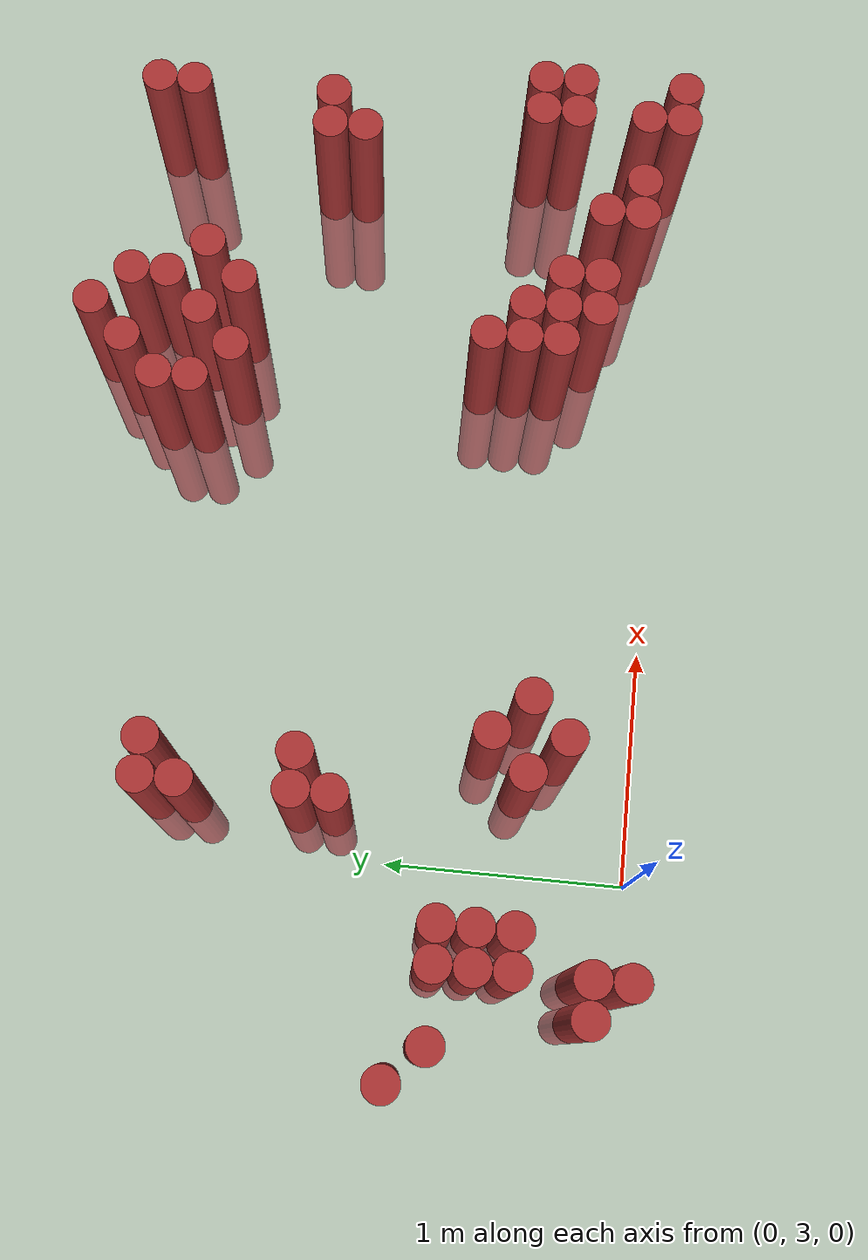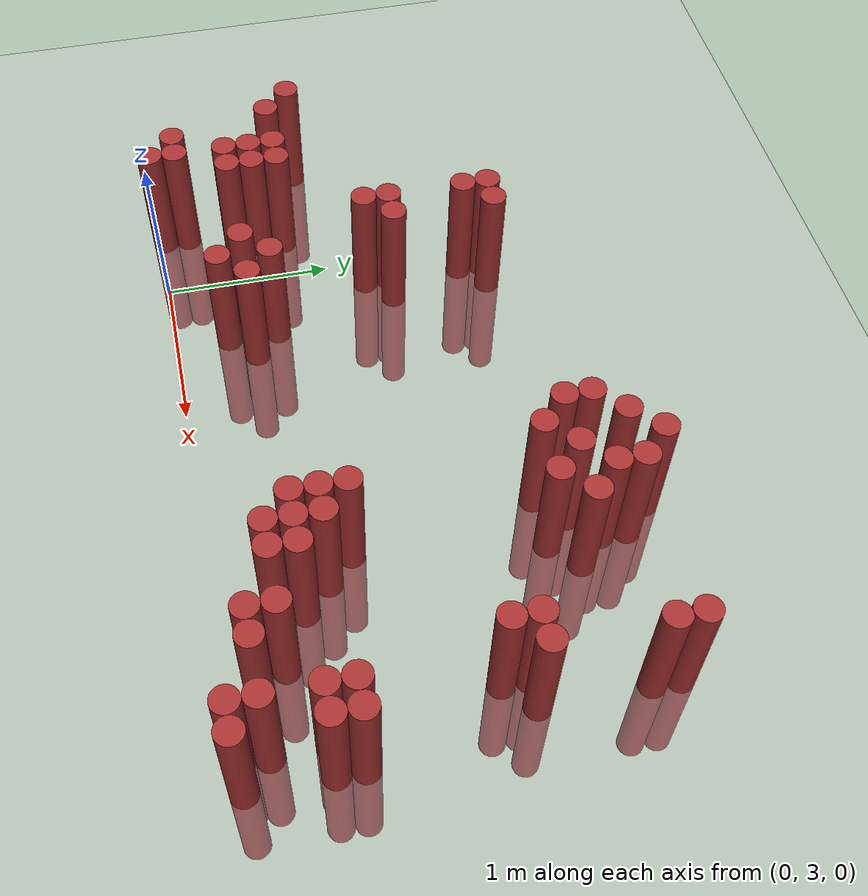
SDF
<sdf version="1.6">
 <world name="default">
  <model name="ground_plane">
   <static>1</static>
   <link name="link">
    <collision name="collision">
     <geometry><plane><normal>0 0 1</normal><size>100 100</size></plane></geometry>
     <surface><friction><ode><mu>100</mu><mu2>50</mu2></ode></friction></surface>
    </collision>
    <visual name="visual">
     <cast_shadows>0</cast_shadows>
     <geometry><plane><normal>0 0 1</normal><size>100 100</size></plane></geometry>
     <material>
      <script><uri>file://media/materials/scripts/gazebo.material</uri><name>Gazebo/Grey</name></script>
     </material>
    </visual>
   </link>
  </model>
  <model name="unit_cylinder_387">
   <static>1</static>
   <pose>-0.875000 3.925000 0.000000 0.000000 0.000000 0.000000</pose>
   <link name="link">
    <inertial>
     <mass>1</mass>
     <inertia><ixx>0.145833</ixx><ixy>0</ixy><ixz>0</ixz><iyy>0.145833</iyy><iyz>0</iyz><izz>0.125</izz></inertia>
    </inertial>
    <collision name="collision">
     <geometry><cylinder><radius>0.075000</radius><length>1.5</length></cylinder></geometry>
    </collision>
    <visual name="visual">
     <geometry><cylinder><radius>0.075000</radius><length>1.5</length></cylinder></geometry>
     <material>
      <ambient>0.648000 0.192000 0.192000 1</ambient>
      <diffuse>0.648000 0.192000 0.192000 1</diffuse>
     </material>
     <material>
      <script><name>Gazebo/Grey</name><uri>file://media/materials/scripts/gazebo.material</uri></script>
     </material>
    </visual>
   </link>
  </model>
  <model name="unit_cylinder_389">
   <static>1</static>
   <pose>-0.725000 3.775000 0.000000 0.000000 0.000000 0.000000</pose>
   <link name="link">
    <inertial>
     <mass>1</mass>
     <inertia><ixx>0.145833</ixx><ixy>0</ixy><ixz>0</ixz><iyy>0.145833</iyy><iyz>0</iyz><izz>0.125</izz></inertia>
    </inertial>
    <collision name="collision">
     <geometry><cylinder><radius>0.075000</radius><length>1.5</length></cylinder></geometry>
    </collision>
    <visual name="visual">
     <geometry><cylinder><radius>0.075000</radius><length>1.5</length></cylinder></geometry>
     <material>
      <ambient>0.648000 0.192000 0.192000 1</ambient>
      <diffuse>0.648000 0.192000 0.192000 1</diffuse>
     </material>
     <material>
      <script><name>Gazebo/Grey</name><uri>file://media/materials/scripts/gazebo.material</uri></script>
     </material>
    </visual>
   </link>
  </model>
  <model name="unit_cylinder_391">
   <static>1</static>
   <pose>-0.575000 3.175000 0.000000 0.000000 0.000000 0.000000</pose>
   <link name="link">
    <inertial>
     <mass>1</mass>
     <inertia><ixx>0.145833</ixx><ixy>0</ixy><ixz>0</ixz><iyy>0.145833</iyy><iyz>0</iyz><izz>0.125</izz></inertia>
    </inertial>
    <collision name="collision">
     <geometry><cylinder><radius>0.075000</radius><length>1.5</length></cylinder></geometry>
    </collision>
    <visual name="visual">
     <geometry><cylinder><radius>0.075000</radius><length>1.5</length></cylinder></geometry>
     <material>
      <ambient>0.648000 0.192000 0.192000 1</ambient>
      <diffuse>0.648000 0.192000 0.192000 1</diffuse>
     </material>
     <material>
      <script><name>Gazebo/Grey</name><uri>file://media/materials/scripts/gazebo.material</uri></script>
     </material>
    </visual>
   </link>
  </model>
  <model name="unit_cylinder_392">
   <static>1</static>
   <pose>-0.425000 3.025000 0.000000 0.000000 0.000000 0.000000</pose>
   <link name="link">
    <inertial>
     <mass>1</mass>
     <inertia><ixx>0.145833</ixx><ixy>0</ixy><ixz>0</ixz><iyy>0.145833</iyy><iyz>0</iyz><izz>0.125</izz></inertia>
    </inertial>
    <collision name="collision">
     <geometry><cylinder><radius>0.075000</radius><length>1.5</length></cylinder></geometry>
    </collision>
    <visual name="visual">
     <geometry><cylinder><radius>0.075000</radius><length>1.5</length></cylinder></geometry>
     <material>
      <ambient>0.648000 0.192000 0.192000 1</ambient>
      <diffuse>0.648000 0.192000 0.192000 1</diffuse>
     </material>
     <material>
      <script><name>Gazebo/Grey</name><uri>file://media/materials/scripts/gazebo.material</uri></script>
     </material>
    </visual>
   </link>
  </model>
  <model name="unit_cylinder_393">
   <static>1</static>
   <pose>-0.425000 3.175000 0.000000 0.000000 0.000000 0.000000</pose>
   <link name="link">
    <inertial>
     <mass>1</mass>
     <inertia><ixx>0.145833</ixx><ixy>0</ixy><ixz>0</ixz><iyy>0.145833</iyy><iyz>0</iyz><izz>0.125</izz></inertia>
    </inertial>
    <collision name="collision">
     <geometry><cylinder><radius>0.075000</radius><length>1.5</length></cylinder></geometry>
    </collision>
    <visual name="visual">
     <geometry><cylinder><radius>0.075000</radius><length>1.5</length></cylinder></geometry>
     <material>
      <ambient>0.648000 0.192000 0.192000 1</ambient>
      <diffuse>0.648000 0.192000 0.192000 1</diffuse>
     </material>
     <material>
      <script><name>Gazebo/Grey</name><uri>file://media/materials/scripts/gazebo.material</uri></script>
     </material>
    </visual>
   </link>
  </model>
  <model name="unit_cylinder_394">
   <static>1</static>
   <pose>-0.425000 3.475000 0.000000 0.000000 0.000000 0.000000</pose>
   <link name="link">
    <inertial>
     <mass>1</mass>
     <inertia><ixx>0.145833</ixx><ixy>0</ixy><ixz>0</ixz><iyy>0.145833</iyy><iyz>0</iyz><izz>0.125</izz></inertia>
    </inertial>
    <collision name="collision">
     <geometry><cylinder><radius>0.075000</radius><length>1.5</length></cylinder></geometry>
    </collision>
    <visual name="visual">
     <geometry><cylinder><radius>0.075000</radius><length>1.5</length></cylinder></geometry>
     <material>
      <ambient>0.648000 0.192000 0.192000 1</ambient>
      <diffuse>0.648000 0.192000 0.192000 1</diffuse>
     </material>
     <material>
      <script><name>Gazebo/Grey</name><uri>file://media/materials/scripts/gazebo.material</uri></script>
     </material>
    </visual>
   </link>
  </model>
  <model name="unit_cylinder_395">
   <static>1</static>
   <pose>-0.425000 3.625000 0.000000 0.000000 0.000000 0.000000</pose>
   <link name="link">
    <inertial>
     <mass>1</mass>
     <inertia><ixx>0.145833</ixx><ixy>0</ixy><ixz>0</ixz><iyy>0.145833</iyy><iyz>0</iyz><izz>0.125</izz></inertia>
    </inertial>
    <collision name="collision">
     <geometry><cylinder><radius>0.075000</radius><length>1.5</length></cylinder></geometry>
    </collision>
    <visual name="visual">
     <geometry><cylinder><radius>0.075000</radius><length>1.5</length></cylinder></geometry>
     <material>
      <ambient>0.648000 0.192000 0.192000 1</ambient>
      <diffuse>0.648000 0.192000 0.192000 1</diffuse>
     </material>
     <material>
      <script><name>Gazebo/Grey</name><uri>file://media/materials/scripts/gazebo.material</uri></script>
     </material>
    </visual>
   </link>
  </model>
  <model name="unit_cylinder_396">
   <static>1</static>
   <pose>-0.425000 3.775000 0.000000 0.000000 0.000000 0.000000</pose>
   <link name="link">
    <inertial>
     <mass>1</mass>
     <inertia><ixx>0.145833</ixx><ixy>0</ixy><ixz>0</ixz><iyy>0.145833</iyy><iyz>0</iyz><izz>0.125</izz></inertia>
    </inertial>
    <collision name="collision">
     <geometry><cylinder><radius>0.075000</radius><length>1.5</length></cylinder></geometry>
    </collision>
    <visual name="visual">
     <geometry><cylinder><radius>0.075000</radius><length>1.5</length></cylinder></geometry>
     <material>
      <ambient>0.648000 0.192000 0.192000 1</ambient>
      <diffuse>0.648000 0.192000 0.192000 1</diffuse>
     </material>
     <material>
      <script><name>Gazebo/Grey</name><uri>file://media/materials/scripts/gazebo.material</uri></script>
     </material>
    </visual>
   </link>
  </model>
  <model name="unit_cylinder_399">
   <static>1</static>
   <pose>-0.275000 3.475000 0.000000 0.000000 0.000000 0.000000</pose>
   <link name="link">
    <inertial>
     <mass>1</mass>
     <inertia><ixx>0.145833</ixx><ixy>0</ixy><ixz>0</ixz><iyy>0.145833</iyy><iyz>0</iyz><izz>0.125</izz></inertia>
    </inertial>
    <collision name="collision">
     <geometry><cylinder><radius>0.075000</radius><length>1.5</length></cylinder></geometry>
    </collision>
    <visual name="visual">
     <geometry><cylinder><radius>0.075000</radius><length>1.5</length></cylinder></geometry>
     <material>
      <ambient>0.648000 0.192000 0.192000 1</ambient>
      <diffuse>0.648000 0.192000 0.192000 1</diffuse>
     </material>
     <material>
      <script><name>Gazebo/Grey</name><uri>file://media/materials/scripts/gazebo.material</uri></script>
     </material>
    </visual>
   </link>
  </model>
  <model name="unit_cylinder_400">
   <static>1</static>
   <pose>-0.275000 3.625000 0.000000 0.000000 0.000000 0.000000</pose>
   <link name="link">
    <inertial>
     <mass>1</mass>
     <inertia><ixx>0.145833</ixx><ixy>0</ixy><ixz>0</ixz><iyy>0.145833</iyy><iyz>0</iyz><izz>0.125</izz></inertia>
    </inertial>
    <collision name="collision">
     <geometry><cylinder><radius>0.075000</radius><length>1.5</length></cylinder></geometry>
    </collision>
    <visual name="visual">
     <geometry><cylinder><radius>0.075000</radius><length>1.5</length></cylinder></geometry>
     <material>
      <ambient>0.648000 0.192000 0.192000 1</ambient>
      <diffuse>0.648000 0.192000 0.192000 1</diffuse>
     </material>
     <material>
      <script><name>Gazebo/Grey</name><uri>file://media/materials/scripts/gazebo.material</uri></script>
     </material>
    </visual>
   </link>
  </model>
  <model name="unit_cylinder_401">
   <static>1</static>
   <pose>-0.275000 3.775000 0.000000 0.000000 0.000000 0.000000</pose>
   <link name="link">
    <inertial>
     <mass>1</mass>
     <inertia><ixx>0.145833</ixx><ixy>0</ixy><ixz>0</ixz><iyy>0.145833</iyy><iyz>0</iyz><izz>0.125</izz></inertia>
    </inertial>
    <collision name="collision">
     <geometry><cylinder><radius>0.075000</radius><length>1.5</length></cylinder></geometry>
    </collision>
    <visual name="visual">
     <geometry><cylinder><radius>0.075000</radius><length>1.5</length></cylinder></geometry>
     <material>
      <ambient>0.648000 0.192000 0.192000 1</ambient>
      <diffuse>0.648000 0.192000 0.192000 1</diffuse>
     </material>
     <material>
      <script><name>Gazebo/Grey</name><uri>file://media/materials/scripts/gazebo.material</uri></script>
     </material>
    </visual>
   </link>
  </model>
  <model name="unit_cylinder_405">
   <static>1</static>
   <pose>0.175000 4.225000 0.000000 0.000000 0.000000 0.000000</pose>
   <link name="link">
    <inertial>
     <mass>1</mass>
     <inertia><ixx>0.145833</ixx><ixy>0</ixy><ixz>0</ixz><iyy>0.145833</iyy><iyz>0</iyz><izz>0.125</izz></inertia>
    </inertial>
    <collision name="collision">
     <geometry><cylinder><radius>0.075000</radius><length>1.5</length></cylinder></geometry>
    </collision>
    <visual name="visual">
     <geometry><cylinder><radius>0.075000</radius><length>1.5</length></cylinder></geometry>
     <material>
      <ambient>0.648000 0.192000 0.192000 1</ambient>
      <diffuse>0.648000 0.192000 0.192000 1</diffuse>
     </material>
     <material>
      <script><name>Gazebo/Grey</name><uri>file://media/materials/scripts/gazebo.material</uri></script>
     </material>
    </visual>
   </link>
  </model>
  <model name="unit_cylinder_406">
   <static>1</static>
   <pose>0.175000 4.375000 0.000000 0.000000 0.000000 0.000000</pose>
   <link name="link">
    <inertial>
     <mass>1</mass>
     <inertia><ixx>0.145833</ixx><ixy>0</ixy><ixz>0</ixz><iyy>0.145833</iyy><iyz>0</iyz><izz>0.125</izz></inertia>
    </inertial>
    <collision name="collision">
     <geometry><cylinder><radius>0.075000</radius><length>1.5</length></cylinder></geometry>
    </collision>
    <visual name="visual">
     <geometry><cylinder><radius>0.075000</radius><length>1.5</length></cylinder></geometry>
     <material>
      <ambient>0.648000 0.192000 0.192000 1</ambient>
      <diffuse>0.648000 0.192000 0.192000 1</diffuse>
     </material>
     <material>
      <script><name>Gazebo/Grey</name><uri>file://media/materials/scripts/gazebo.material</uri></script>
     </material>
    </visual>
   </link>
  </model>
  <model name="unit_cylinder_407">
   <static>1</static>
   <pose>0.175000 4.825000 0.000000 0.000000 0.000000 0.000000</pose>
   <link name="link">
    <inertial>
     <mass>1</mass>
     <inertia><ixx>0.145833</ixx><ixy>0</ixy><ixz>0</ixz><iyy>0.145833</iyy><iyz>0</iyz><izz>0.125</izz></inertia>
    </inertial>
    <collision name="collision">
     <geometry><cylinder><radius>0.075000</radius><length>1.5</length></cylinder></geometry>
    </collision>
    <visual name="visual">
     <geometry><cylinder><radius>0.075000</radius><length>1.5</length></cylinder></geometry>
     <material>
      <ambient>0.648000 0.192000 0.192000 1</ambient>
      <diffuse>0.648000 0.192000 0.192000 1</diffuse>
     </material>
     <material>
      <script><name>Gazebo/Grey</name><uri>file://media/materials/scripts/gazebo.material</uri></script>
     </material>
    </visual>
   </link>
  </model>
  <model name="unit_cylinder_408">
   <static>1</static>
   <pose>0.175000 4.975000 0.000000 0.000000 0.000000 0.000000</pose>
   <link name="link">
    <inertial>
     <mass>1</mass>
     <inertia><ixx>0.145833</ixx><ixy>0</ixy><ixz>0</ixz><iyy>0.145833</iyy><iyz>0</iyz><izz>0.125</izz></inertia>
    </inertial>
    <collision name="collision">
     <geometry><cylinder><radius>0.075000</radius><length>1.5</length></cylinder></geometry>
    </collision>
    <visual name="visual">
     <geometry><cylinder><radius>0.075000</radius><length>1.5</length></cylinder></geometry>
     <material>
      <ambient>0.648000 0.192000 0.192000 1</ambient>
      <diffuse>0.648000 0.192000 0.192000 1</diffuse>
     </material>
     <material>
      <script><name>Gazebo/Grey</name><uri>file://media/materials/scripts/gazebo.material</uri></script>
     </material>
    </visual>
   </link>
  </model>
  <model name="unit_cylinder_415">
   <static>1</static>
   <pose>0.325000 3.475000 0.000000 0.000000 0.000000 0.000000</pose>
   <link name="link">
    <inertial>
     <mass>1</mass>
     <inertia><ixx>0.145833</ixx><ixy>0</ixy><ixz>0</ixz><iyy>0.145833</iyy><iyz>0</iyz><izz>0.125</izz></inertia>
    </inertial>
    <collision name="collision">
     <geometry><cylinder><radius>0.075000</radius><length>1.5</length></cylinder></geometry>
    </collision>
    <visual name="visual">
     <geometry><cylinder><radius>0.075000</radius><length>1.5</length></cylinder></geometry>
     <material>
      <ambient>0.648000 0.192000 0.192000 1</ambient>
      <diffuse>0.648000 0.192000 0.192000 1</diffuse>
     </material>
     <material>
      <script><name>Gazebo/Grey</name><uri>file://media/materials/scripts/gazebo.material</uri></script>
     </material>
    </visual>
   </link>
  </model>
  <model name="unit_cylinder_416">
   <static>1</static>
   <pose>0.325000 4.375000 0.000000 0.000000 0.000000 0.000000</pose>
   <link name="link">
    <inertial>
     <mass>1</mass>
     <inertia><ixx>0.145833</ixx><ixy>0</ixy><ixz>0</ixz><iyy>0.145833</iyy><iyz>0</iyz><izz>0.125</izz></inertia>
    </inertial>
    <collision name="collision">
     <geometry><cylinder><radius>0.075000</radius><length>1.5</length></cylinder></geometry>
    </collision>
    <visual name="visual">
     <geometry><cylinder><radius>0.075000</radius><length>1.5</length></cylinder></geometry>
     <material>
      <ambient>0.648000 0.192000 0.192000 1</ambient>
      <diffuse>0.648000 0.192000 0.192000 1</diffuse>
     </material>
     <material>
      <script><name>Gazebo/Grey</name><uri>file://media/materials/scripts/gazebo.material</uri></script>
     </material>
    </visual>
   </link>
  </model>
  <model name="unit_cylinder_417">
   <static>1</static>
   <pose>0.325000 4.975000 0.000000 0.000000 0.000000 0.000000</pose>
   <link name="link">
    <inertial>
     <mass>1</mass>
     <inertia><ixx>0.145833</ixx><ixy>0</ixy><ixz>0</ixz><iyy>0.145833</iyy><iyz>0</iyz><izz>0.125</izz></inertia>
    </inertial>
    <collision name="collision">
     <geometry><cylinder><radius>0.075000</radius><length>1.5</length></cylinder></geometry>
    </collision>
    <visual name="visual">
     <geometry><cylinder><radius>0.075000</radius><length>1.5</length></cylinder></geometry>
     <material>
      <ambient>0.648000 0.192000 0.192000 1</ambient>
      <diffuse>0.648000 0.192000 0.192000 1</diffuse>
     </material>
     <material>
      <script><name>Gazebo/Grey</name><uri>file://media/materials/scripts/gazebo.material</uri></script>
     </material>
    </visual>
   </link>
  </model>
  <model name="unit_cylinder_424">
   <static>1</static>
   <pose>0.475000 3.325000 0.000000 0.000000 0.000000 0.000000</pose>
   <link name="link">
    <inertial>
     <mass>1</mass>
     <inertia><ixx>0.145833</ixx><ixy>0</ixy><ixz>0</ixz><iyy>0.145833</iyy><iyz>0</iyz><izz>0.125</izz></inertia>
    </inertial>
    <collision name="collision">
     <geometry><cylinder><radius>0.075000</radius><length>1.5</length></cylinder></geometry>
    </collision>
    <visual name="visual">
     <geometry><cylinder><radius>0.075000</radius><length>1.5</length></cylinder></geometry>
     <material>
      <ambient>0.648000 0.192000 0.192000 1</ambient>
      <diffuse>0.648000 0.192000 0.192000 1</diffuse>
     </material>
     <material>
      <script><name>Gazebo/Grey</name><uri>file://media/materials/scripts/gazebo.material</uri></script>
     </material>
    </visual>
   </link>
  </model>
  <model name="unit_cylinder_425">
   <static>1</static>
   <pose>0.475000 3.625000 0.000000 0.000000 0.000000 0.000000</pose>
   <link name="link">
    <inertial>
     <mass>1</mass>
     <inertia><ixx>0.145833</ixx><ixy>0</ixy><ixz>0</ixz><iyy>0.145833</iyy><iyz>0</iyz><izz>0.125</izz></inertia>
    </inertial>
    <collision name="collision">
     <geometry><cylinder><radius>0.075000</radius><length>1.5</length></cylinder></geometry>
    </collision>
    <visual name="visual">
     <geometry><cylinder><radius>0.075000</radius><length>1.5</length></cylinder></geometry>
     <material>
      <ambient>0.648000 0.192000 0.192000 1</ambient>
      <diffuse>0.648000 0.192000 0.192000 1</diffuse>
     </material>
     <material>
      <script><name>Gazebo/Grey</name><uri>file://media/materials/scripts/gazebo.material</uri></script>
     </material>
    </visual>
   </link>
  </model>
  <model name="unit_cylinder_427">
   <static>1</static>
   <pose>0.625000 3.475000 0.000000 0.000000 0.000000 0.000000</pose>
   <link name="link">
    <inertial>
     <mass>1</mass>
     <inertia><ixx>0.145833</ixx><ixy>0</ixy><ixz>0</ixz><iyy>0.145833</iyy><iyz>0</iyz><izz>0.125</izz></inertia>
    </inertial>
    <collision name="collision">
     <geometry><cylinder><radius>0.075000</radius><length>1.5</length></cylinder></geometry>
    </collision>
    <visual name="visual">
     <geometry><cylinder><radius>0.075000</radius><length>1.5</length></cylinder></geometry>
     <material>
      <ambient>0.648000 0.192000 0.192000 1</ambient>
      <diffuse>0.648000 0.192000 0.192000 1</diffuse>
     </material>
     <material>
      <script><name>Gazebo/Grey</name><uri>file://media/materials/scripts/gazebo.material</uri></script>
     </material>
    </visual>
   </link>
  </model>
  <model name="unit_cylinder_442">
   <static>1</static>
   <pose>1.825000 4.975000 0.000000 0.000000 0.000000 0.000000</pose>
   <link name="link">
    <inertial>
     <mass>1</mass>
     <inertia><ixx>0.145833</ixx><ixy>0</ixy><ixz>0</ixz><iyy>0.145833</iyy><iyz>0</iyz><izz>0.125</izz></inertia>
    </inertial>
    <collision name="collision">
     <geometry><cylinder><radius>0.075000</radius><length>1.5</length></cylinder></geometry>
    </collision>
    <visual name="visual">
     <geometry><cylinder><radius>0.075000</radius><length>1.5</length></cylinder></geometry>
     <material>
      <ambient>0.648000 0.192000 0.192000 1</ambient>
      <diffuse>0.648000 0.192000 0.192000 1</diffuse>
     </material>
     <material>
      <script><name>Gazebo/Grey</name><uri>file://media/materials/scripts/gazebo.material</uri></script>
     </material>
    </visual>
   </link>
  </model>
  <model name="unit_cylinder_443">
   <static>1</static>
   <pose>1.825000 5.125000 0.000000 0.000000 0.000000 0.000000</pose>
   <link name="link">
    <inertial>
     <mass>1</mass>
     <inertia><ixx>0.145833</ixx><ixy>0</ixy><ixz>0</ixz><iyy>0.145833</iyy><iyz>0</iyz><izz>0.125</izz></inertia>
    </inertial>
    <collision name="collision">
     <geometry><cylinder><radius>0.075000</radius><length>1.5</length></cylinder></geometry>
    </collision>
    <visual name="visual">
     <geometry><cylinder><radius>0.075000</radius><length>1.5</length></cylinder></geometry>
     <material>
      <ambient>0.648000 0.192000 0.192000 1</ambient>
      <diffuse>0.648000 0.192000 0.192000 1</diffuse>
     </material>
     <material>
      <script><name>Gazebo/Grey</name><uri>file://media/materials/scripts/gazebo.material</uri></script>
     </material>
    </visual>
   </link>
  </model>
  <model name="unit_cylinder_447">
   <static>1</static>
   <pose>1.975000 4.825000 0.000000 0.000000 0.000000 0.000000</pose>
   <link name="link">
    <inertial>
     <mass>1</mass>
     <inertia><ixx>0.145833</ixx><ixy>0</ixy><ixz>0</ixz><iyy>0.145833</iyy><iyz>0</iyz><izz>0.125</izz></inertia>
    </inertial>
    <collision name="collision">
     <geometry><cylinder><radius>0.075000</radius><length>1.5</length></cylinder></geometry>
    </collision>
    <visual name="visual">
     <geometry><cylinder><radius>0.075000</radius><length>1.5</length></cylinder></geometry>
     <material>
      <ambient>0.648000 0.192000 0.192000 1</ambient>
      <diffuse>0.648000 0.192000 0.192000 1</diffuse>
     </material>
     <material>
      <script><name>Gazebo/Grey</name><uri>file://media/materials/scripts/gazebo.material</uri></script>
     </material>
    </visual>
   </link>
  </model>
  <model name="unit_cylinder_448">
   <static>1</static>
   <pose>1.975000 5.275000 0.000000 0.000000 0.000000 0.000000</pose>
   <link name="link">
    <inertial>
     <mass>1</mass>
     <inertia><ixx>0.145833</ixx><ixy>0</ixy><ixz>0</ixz><iyy>0.145833</iyy><iyz>0</iyz><izz>0.125</izz></inertia>
    </inertial>
    <collision name="collision">
     <geometry><cylinder><radius>0.075000</radius><length>1.5</length></cylinder></geometry>
    </collision>
    <visual name="visual">
     <geometry><cylinder><radius>0.075000</radius><length>1.5</length></cylinder></geometry>
     <material>
      <ambient>0.648000 0.192000 0.192000 1</ambient>
      <diffuse>0.648000 0.192000 0.192000 1</diffuse>
     </material>
     <material>
      <script><name>Gazebo/Grey</name><uri>file://media/materials/scripts/gazebo.material</uri></script>
     </material>
    </visual>
   </link>
  </model>
  <model name="unit_cylinder_451">
   <static>1</static>
   <pose>2.125000 3.475000 0.000000 0.000000 0.000000 0.000000</pose>
   <link name="link">
    <inertial>
     <mass>1</mass>
     <inertia><ixx>0.145833</ixx><ixy>0</ixy><ixz>0</ixz><iyy>0.145833</iyy><iyz>0</iyz><izz>0.125</izz></inertia>
    </inertial>
    <collision name="collision">
     <geometry><cylinder><radius>0.075000</radius><length>1.5</length></cylinder></geometry>
    </collision>
    <visual name="visual">
     <geometry><cylinder><radius>0.075000</radius><length>1.5</length></cylinder></geometry>
     <material>
      <ambient>0.648000 0.192000 0.192000 1</ambient>
      <diffuse>0.648000 0.192000 0.192000 1</diffuse>
     </material>
     <material>
      <script><name>Gazebo/Grey</name><uri>file://media/materials/scripts/gazebo.material</uri></script>
     </material>
    </visual>
   </link>
  </model>
  <model name="unit_cylinder_452">
   <static>1</static>
   <pose>2.125000 3.625000 0.000000 0.000000 0.000000 0.000000</pose>
   <link name="link">
    <inertial>
     <mass>1</mass>
     <inertia><ixx>0.145833</ixx><ixy>0</ixy><ixz>0</ixz><iyy>0.145833</iyy><iyz>0</iyz><izz>0.125</izz></inertia>
    </inertial>
    <collision name="collision">
     <geometry><cylinder><radius>0.075000</radius><length>1.5</length></cylinder></geometry>
    </collision>
    <visual name="visual">
     <geometry><cylinder><radius>0.075000</radius><length>1.5</length></cylinder></geometry>
     <material>
      <ambient>0.648000 0.192000 0.192000 1</ambient>
      <diffuse>0.648000 0.192000 0.192000 1</diffuse>
     </material>
     <material>
      <script><name>Gazebo/Grey</name><uri>file://media/materials/scripts/gazebo.material</uri></script>
     </material>
    </visual>
   </link>
  </model>
  <model name="unit_cylinder_453">
   <static>1</static>
   <pose>2.125000 3.775000 0.000000 0.000000 0.000000 0.000000</pose>
   <link name="link">
    <inertial>
     <mass>1</mass>
     <inertia><ixx>0.145833</ixx><ixy>0</ixy><ixz>0</ixz><iyy>0.145833</iyy><iyz>0</iyz><izz>0.125</izz></inertia>
    </inertial>
    <collision name="collision">
     <geometry><cylinder><radius>0.075000</radius><length>1.5</length></cylinder></geometry>
    </collision>
    <visual name="visual">
     <geometry><cylinder><radius>0.075000</radius><length>1.5</length></cylinder></geometry>
     <material>
      <ambient>0.648000 0.192000 0.192000 1</ambient>
      <diffuse>0.648000 0.192000 0.192000 1</diffuse>
     </material>
     <material>
      <script><name>Gazebo/Grey</name><uri>file://media/materials/scripts/gazebo.material</uri></script>
     </material>
    </visual>
   </link>
  </model>
  <model name="unit_cylinder_454">
   <static>1</static>
   <pose>2.125000 4.975000 0.000000 0.000000 0.000000 0.000000</pose>
   <link name="link">
    <inertial>
     <mass>1</mass>
     <inertia><ixx>0.145833</ixx><ixy>0</ixy><ixz>0</ixz><iyy>0.145833</iyy><iyz>0</iyz><izz>0.125</izz></inertia>
    </inertial>
    <collision name="collision">
     <geometry><cylinder><radius>0.075000</radius><length>1.5</length></cylinder></geometry>
    </collision>
    <visual name="visual">
     <geometry><cylinder><radius>0.075000</radius><length>1.5</length></cylinder></geometry>
     <material>
      <ambient>0.648000 0.192000 0.192000 1</ambient>
      <diffuse>0.648000 0.192000 0.192000 1</diffuse>
     </material>
     <material>
      <script><name>Gazebo/Grey</name><uri>file://media/materials/scripts/gazebo.material</uri></script>
     </material>
    </visual>
   </link>
  </model>
  <model name="unit_cylinder_455">
   <static>1</static>
   <pose>2.125000 5.425000 0.000000 0.000000 0.000000 0.000000</pose>
   <link name="link">
    <inertial>
     <mass>1</mass>
     <inertia><ixx>0.145833</ixx><ixy>0</ixy><ixz>0</ixz><iyy>0.145833</iyy><iyz>0</iyz><izz>0.125</izz></inertia>
    </inertial>
    <collision name="collision">
     <geometry><cylinder><radius>0.075000</radius><length>1.5</length></cylinder></geometry>
    </collision>
    <visual name="visual">
     <geometry><cylinder><radius>0.075000</radius><length>1.5</length></cylinder></geometry>
     <material>
      <ambient>0.648000 0.192000 0.192000 1</ambient>
      <diffuse>0.648000 0.192000 0.192000 1</diffuse>
     </material>
     <material>
      <script><name>Gazebo/Grey</name><uri>file://media/materials/scripts/gazebo.material</uri></script>
     </material>
    </visual>
   </link>
  </model>
  <model name="unit_cylinder_460">
   <static>1</static>
   <pose>2.275000 3.325000 0.000000 0.000000 0.000000 0.000000</pose>
   <link name="link">
    <inertial>
     <mass>1</mass>
     <inertia><ixx>0.145833</ixx><ixy>0</ixy><ixz>0</ixz><iyy>0.145833</iyy><iyz>0</iyz><izz>0.125</izz></inertia>
    </inertial>
    <collision name="collision">
     <geometry><cylinder><radius>0.075000</radius><length>1.5</length></cylinder></geometry>
    </collision>
    <visual name="visual">
     <geometry><cylinder><radius>0.075000</radius><length>1.5</length></cylinder></geometry>
     <material>
      <ambient>0.648000 0.192000 0.192000 1</ambient>
      <diffuse>0.648000 0.192000 0.192000 1</diffuse>
     </material>
     <material>
      <script><name>Gazebo/Grey</name><uri>file://media/materials/scripts/gazebo.material</uri></script>
     </material>
    </visual>
   </link>
  </model>
  <model name="unit_cylinder_461">
   <static>1</static>
   <pose>2.275000 3.475000 0.000000 0.000000 0.000000 0.000000</pose>
   <link name="link">
    <inertial>
     <mass>1</mass>
     <inertia><ixx>0.145833</ixx><ixy>0</ixy><ixz>0</ixz><iyy>0.145833</iyy><iyz>0</iyz><izz>0.125</izz></inertia>
    </inertial>
    <collision name="collision">
     <geometry><cylinder><radius>0.075000</radius><length>1.5</length></cylinder></geometry>
    </collision>
    <visual name="visual">
     <geometry><cylinder><radius>0.075000</radius><length>1.5</length></cylinder></geometry>
     <material>
      <ambient>0.648000 0.192000 0.192000 1</ambient>
      <diffuse>0.648000 0.192000 0.192000 1</diffuse>
     </material>
     <material>
      <script><name>Gazebo/Grey</name><uri>file://media/materials/scripts/gazebo.material</uri></script>
     </material>
    </visual>
   </link>
  </model>
  <model name="unit_cylinder_462">
   <static>1</static>
   <pose>2.275000 3.625000 0.000000 0.000000 0.000000 0.000000</pose>
   <link name="link">
    <inertial>
     <mass>1</mass>
     <inertia><ixx>0.145833</ixx><ixy>0</ixy><ixz>0</ixz><iyy>0.145833</iyy><iyz>0</iyz><izz>0.125</izz></inertia>
    </inertial>
    <collision name="collision">
     <geometry><cylinder><radius>0.075000</radius><length>1.5</length></cylinder></geometry>
    </collision>
    <visual name="visual">
     <geometry><cylinder><radius>0.075000</radius><length>1.5</length></cylinder></geometry>
     <material>
      <ambient>0.648000 0.192000 0.192000 1</ambient>
      <diffuse>0.648000 0.192000 0.192000 1</diffuse>
     </material>
     <material>
      <script><name>Gazebo/Grey</name><uri>file://media/materials/scripts/gazebo.material</uri></script>
     </material>
    </visual>
   </link>
  </model>
  <model name="unit_cylinder_463">
   <static>1</static>
   <pose>2.275000 4.825000 0.000000 0.000000 0.000000 0.000000</pose>
   <link name="link">
    <inertial>
     <mass>1</mass>
     <inertia><ixx>0.145833</ixx><ixy>0</ixy><ixz>0</ixz><iyy>0.145833</iyy><iyz>0</iyz><izz>0.125</izz></inertia>
    </inertial>
    <collision name="collision">
     <geometry><cylinder><radius>0.075000</radius><length>1.5</length></cylinder></geometry>
    </collision>
    <visual name="visual">
     <geometry><cylinder><radius>0.075000</radius><length>1.5</length></cylinder></geometry>
     <material>
      <ambient>0.648000 0.192000 0.192000 1</ambient>
      <diffuse>0.648000 0.192000 0.192000 1</diffuse>
     </material>
     <material>
      <script><name>Gazebo/Grey</name><uri>file://media/materials/scripts/gazebo.material</uri></script>
     </material>
    </visual>
   </link>
  </model>
  <model name="unit_cylinder_464">
   <static>1</static>
   <pose>2.275000 5.125000 0.000000 0.000000 0.000000 0.000000</pose>
   <link name="link">
    <inertial>
     <mass>1</mass>
     <inertia><ixx>0.145833</ixx><ixy>0</ixy><ixz>0</ixz><iyy>0.145833</iyy><iyz>0</iyz><izz>0.125</izz></inertia>
    </inertial>
    <collision name="collision">
     <geometry><cylinder><radius>0.075000</radius><length>1.5</length></cylinder></geometry>
    </collision>
    <visual name="visual">
     <geometry><cylinder><radius>0.075000</radius><length>1.5</length></cylinder></geometry>
     <material>
      <ambient>0.648000 0.192000 0.192000 1</ambient>
      <diffuse>0.648000 0.192000 0.192000 1</diffuse>
     </material>
     <material>
      <script><name>Gazebo/Grey</name><uri>file://media/materials/scripts/gazebo.material</uri></script>
     </material>
    </visual>
   </link>
  </model>
  <model name="unit_cylinder_465">
   <static>1</static>
   <pose>2.275000 5.275000 0.000000 0.000000 0.000000 0.000000</pose>
   <link name="link">
    <inertial>
     <mass>1</mass>
     <inertia><ixx>0.145833</ixx><ixy>0</ixy><ixz>0</ixz><iyy>0.145833</iyy><iyz>0</iyz><izz>0.125</izz></inertia>
    </inertial>
    <collision name="collision">
     <geometry><cylinder><radius>0.075000</radius><length>1.5</length></cylinder></geometry>
    </collision>
    <visual name="visual">
     <geometry><cylinder><radius>0.075000</radius><length>1.5</length></cylinder></geometry>
     <material>
      <ambient>0.648000 0.192000 0.192000 1</ambient>
      <diffuse>0.648000 0.192000 0.192000 1</diffuse>
     </material>
     <material>
      <script><name>Gazebo/Grey</name><uri>file://media/materials/scripts/gazebo.material</uri></script>
     </material>
    </visual>
   </link>
  </model>
  <model name="unit_cylinder_468">
   <static>1</static>
   <pose>2.425000 3.325000 0.000000 0.000000 0.000000 0.000000</pose>
   <link name="link">
    <inertial>
     <mass>1</mass>
     <inertia><ixx>0.145833</ixx><ixy>0</ixy><ixz>0</ixz><iyy>0.145833</iyy><iyz>0</iyz><izz>0.125</izz></inertia>
    </inertial>
    <collision name="collision">
     <geometry><cylinder><radius>0.075000</radius><length>1.5</length></cylinder></geometry>
    </collision>
    <visual name="visual">
     <geometry><cylinder><radius>0.075000</radius><length>1.5</length></cylinder></geometry>
     <material>
      <ambient>0.648000 0.192000 0.192000 1</ambient>
      <diffuse>0.648000 0.192000 0.192000 1</diffuse>
     </material>
     <material>
      <script><name>Gazebo/Grey</name><uri>file://media/materials/scripts/gazebo.material</uri></script>
     </material>
    </visual>
   </link>
  </model>
  <model name="unit_cylinder_469">
   <static>1</static>
   <pose>2.425000 3.475000 0.000000 0.000000 0.000000 0.000000</pose>
   <link name="link">
    <inertial>
     <mass>1</mass>
     <inertia><ixx>0.145833</ixx><ixy>0</ixy><ixz>0</ixz><iyy>0.145833</iyy><iyz>0</iyz><izz>0.125</izz></inertia>
    </inertial>
    <collision name="collision">
     <geometry><cylinder><radius>0.075000</radius><length>1.5</length></cylinder></geometry>
    </collision>
    <visual name="visual">
     <geometry><cylinder><radius>0.075000</radius><length>1.5</length></cylinder></geometry>
     <material>
      <ambient>0.648000 0.192000 0.192000 1</ambient>
      <diffuse>0.648000 0.192000 0.192000 1</diffuse>
     </material>
     <material>
      <script><name>Gazebo/Grey</name><uri>file://media/materials/scripts/gazebo.material</uri></script>
     </material>
    </visual>
   </link>
  </model>
  <model name="unit_cylinder_470">
   <static>1</static>
   <pose>2.425000 4.975000 0.000000 0.000000 0.000000 0.000000</pose>
   <link name="link">
    <inertial>
     <mass>1</mass>
     <inertia><ixx>0.145833</ixx><ixy>0</ixy><ixz>0</ixz><iyy>0.145833</iyy><iyz>0</iyz><izz>0.125</izz></inertia>
    </inertial>
    <collision name="collision">
     <geometry><cylinder><radius>0.075000</radius><length>1.5</length></cylinder></geometry>
    </collision>
    <visual name="visual">
     <geometry><cylinder><radius>0.075000</radius><length>1.5</length></cylinder></geometry>
     <material>
      <ambient>0.648000 0.192000 0.192000 1</ambient>
      <diffuse>0.648000 0.192000 0.192000 1</diffuse>
     </material>
     <material>
      <script><name>Gazebo/Grey</name><uri>file://media/materials/scripts/gazebo.material</uri></script>
     </material>
    </visual>
   </link>
  </model>
  <model name="unit_cylinder_476">
   <static>1</static>
   <pose>2.725000 3.175000 0.000000 0.000000 0.000000 0.000000</pose>
   <link name="link">
    <inertial>
     <mass>1</mass>
     <inertia><ixx>0.145833</ixx><ixy>0</ixy><ixz>0</ixz><iyy>0.145833</iyy><iyz>0</iyz><izz>0.125</izz></inertia>
    </inertial>
    <collision name="collision">
     <geometry><cylinder><radius>0.075000</radius><length>1.5</length></cylinder></geometry>
    </collision>
    <visual name="visual">
     <geometry><cylinder><radius>0.075000</radius><length>1.5</length></cylinder></geometry>
     <material>
      <ambient>0.648000 0.192000 0.192000 1</ambient>
      <diffuse>0.648000 0.192000 0.192000 1</diffuse>
     </material>
     <material>
      <script><name>Gazebo/Grey</name><uri>file://media/materials/scripts/gazebo.material</uri></script>
     </material>
    </visual>
   </link>
  </model>
  <model name="unit_cylinder_477">
   <static>1</static>
   <pose>2.725000 3.325000 0.000000 0.000000 0.000000 0.000000</pose>
   <link name="link">
    <inertial>
     <mass>1</mass>
     <inertia><ixx>0.145833</ixx><ixy>0</ixy><ixz>0</ixz><iyy>0.145833</iyy><iyz>0</iyz><izz>0.125</izz></inertia>
    </inertial>
    <collision name="collision">
     <geometry><cylinder><radius>0.075000</radius><length>1.5</length></cylinder></geometry>
    </collision>
    <visual name="visual">
     <geometry><cylinder><radius>0.075000</radius><length>1.5</length></cylinder></geometry>
     <material>
      <ambient>0.648000 0.192000 0.192000 1</ambient>
      <diffuse>0.648000 0.192000 0.192000 1</diffuse>
     </material>
     <material>
      <script><name>Gazebo/Grey</name><uri>file://media/materials/scripts/gazebo.material</uri></script>
     </material>
    </visual>
   </link>
  </model>
  <model name="unit_cylinder_485">
   <static>1</static>
   <pose>2.875000 3.175000 0.000000 0.000000 0.000000 0.000000</pose>
   <link name="link">
    <inertial>
     <mass>1</mass>
     <inertia><ixx>0.145833</ixx><ixy>0</ixy><ixz>0</ixz><iyy>0.145833</iyy><iyz>0</iyz><izz>0.125</izz></inertia>
    </inertial>
    <collision name="collision">
     <geometry><cylinder><radius>0.075000</radius><length>1.5</length></cylinder></geometry>
    </collision>
    <visual name="visual">
     <geometry><cylinder><radius>0.075000</radius><length>1.5</length></cylinder></geometry>
     <material>
      <ambient>0.648000 0.192000 0.192000 1</ambient>
      <diffuse>0.648000 0.192000 0.192000 1</diffuse>
     </material>
     <material>
      <script><name>Gazebo/Grey</name><uri>file://media/materials/scripts/gazebo.material</uri></script>
     </material>
    </visual>
   </link>
  </model>
  <model name="unit_cylinder_493">
   <static>1</static>
   <pose>3.025000 4.375000 0.000000 0.000000 0.000000 0.000000</pose>
   <link name="link">
    <inertial>
     <mass>1</mass>
     <inertia><ixx>0.145833</ixx><ixy>0</ixy><ixz>0</ixz><iyy>0.145833</iyy><iyz>0</iyz><izz>0.125</izz></inertia>
    </inertial>
    <collision name="collision">
     <geometry><cylinder><radius>0.075000</radius><length>1.5</length></cylinder></geometry>
    </collision>
    <visual name="visual">
     <geometry><cylinder><radius>0.075000</radius><length>1.5</length></cylinder></geometry>
     <material>
      <ambient>0.648000 0.192000 0.192000 1</ambient>
      <diffuse>0.648000 0.192000 0.192000 1</diffuse>
     </material>
     <material>
      <script><name>Gazebo/Grey</name><uri>file://media/materials/scripts/gazebo.material</uri></script>
     </material>
    </visual>
   </link>
  </model>
  <model name="unit_cylinder_494">
   <static>1</static>
   <pose>3.025000 4.525000 0.000000 0.000000 0.000000 0.000000</pose>
   <link name="link">
    <inertial>
     <mass>1</mass>
     <inertia><ixx>0.145833</ixx><ixy>0</ixy><ixz>0</ixz><iyy>0.145833</iyy><iyz>0</iyz><izz>0.125</izz></inertia>
    </inertial>
    <collision name="collision">
     <geometry><cylinder><radius>0.075000</radius><length>1.5</length></cylinder></geometry>
    </collision>
    <visual name="visual">
     <geometry><cylinder><radius>0.075000</radius><length>1.5</length></cylinder></geometry>
     <material>
      <ambient>0.648000 0.192000 0.192000 1</ambient>
      <diffuse>0.648000 0.192000 0.192000 1</diffuse>
     </material>
     <material>
      <script><name>Gazebo/Grey</name><uri>file://media/materials/scripts/gazebo.material</uri></script>
     </material>
    </visual>
   </link>
  </model>
  <model name="unit_cylinder_499">
   <static>1</static>
   <pose>3.175000 3.025000 0.000000 0.000000 0.000000 0.000000</pose>
   <link name="link">
    <inertial>
     <mass>1</mass>
     <inertia><ixx>0.145833</ixx><ixy>0</ixy><ixz>0</ixz><iyy>0.145833</iyy><iyz>0</iyz><izz>0.125</izz></inertia>
    </inertial>
    <collision name="collision">
     <geometry><cylinder><radius>0.075000</radius><length>1.5</length></cylinder></geometry>
    </collision>
    <visual name="visual">
     <geometry><cylinder><radius>0.075000</radius><length>1.5</length></cylinder></geometry>
     <material>
      <ambient>0.648000 0.192000 0.192000 1</ambient>
      <diffuse>0.648000 0.192000 0.192000 1</diffuse>
     </material>
     <material>
      <script><name>Gazebo/Grey</name><uri>file://media/materials/scripts/gazebo.material</uri></script>
     </material>
    </visual>
   </link>
  </model>
  <model name="unit_cylinder_500">
   <static>1</static>
   <pose>3.175000 3.175000 0.000000 0.000000 0.000000 0.000000</pose>
   <link name="link">
    <inertial>
     <mass>1</mass>
     <inertia><ixx>0.145833</ixx><ixy>0</ixy><ixz>0</ixz><iyy>0.145833</iyy><iyz>0</iyz><izz>0.125</izz></inertia>
    </inertial>
    <collision name="collision">
     <geometry><cylinder><radius>0.075000</radius><length>1.5</length></cylinder></geometry>
    </collision>
    <visual name="visual">
     <geometry><cylinder><radius>0.075000</radius><length>1.5</length></cylinder></geometry>
     <material>
      <ambient>0.648000 0.192000 0.192000 1</ambient>
      <diffuse>0.648000 0.192000 0.192000 1</diffuse>
     </material>
     <material>
      <script><name>Gazebo/Grey</name><uri>file://media/materials/scripts/gazebo.material</uri></script>
     </material>
    </visual>
   </link>
  </model>
  <model name="unit_cylinder_501">
   <static>1</static>
   <pose>3.175000 3.475000 0.000000 0.000000 0.000000 0.000000</pose>
   <link name="link">
    <inertial>
     <mass>1</mass>
     <inertia><ixx>0.145833</ixx><ixy>0</ixy><ixz>0</ixz><iyy>0.145833</iyy><iyz>0</iyz><izz>0.125</izz></inertia>
    </inertial>
    <collision name="collision">
     <geometry><cylinder><radius>0.075000</radius><length>1.5</length></cylinder></geometry>
    </collision>
    <visual name="visual">
     <geometry><cylinder><radius>0.075000</radius><length>1.5</length></cylinder></geometry>
     <material>
      <ambient>0.648000 0.192000 0.192000 1</ambient>
      <diffuse>0.648000 0.192000 0.192000 1</diffuse>
     </material>
     <material>
      <script><name>Gazebo/Grey</name><uri>file://media/materials/scripts/gazebo.material</uri></script>
     </material>
    </visual>
   </link>
  </model>
  <model name="unit_cylinder_502">
   <static>1</static>
   <pose>3.175000 3.625000 0.000000 0.000000 0.000000 0.000000</pose>
   <link name="link">
    <inertial>
     <mass>1</mass>
     <inertia><ixx>0.145833</ixx><ixy>0</ixy><ixz>0</ixz><iyy>0.145833</iyy><iyz>0</iyz><izz>0.125</izz></inertia>
    </inertial>
    <collision name="collision">
     <geometry><cylinder><radius>0.075000</radius><length>1.5</length></cylinder></geometry>
    </collision>
    <visual name="visual">
     <geometry><cylinder><radius>0.075000</radius><length>1.5</length></cylinder></geometry>
     <material>
      <ambient>0.648000 0.192000 0.192000 1</ambient>
      <diffuse>0.648000 0.192000 0.192000 1</diffuse>
     </material>
     <material>
      <script><name>Gazebo/Grey</name><uri>file://media/materials/scripts/gazebo.material</uri></script>
     </material>
    </visual>
   </link>
  </model>
  <model name="unit_cylinder_503">
   <static>1</static>
   <pose>3.175000 4.525000 0.000000 0.000000 0.000000 0.000000</pose>
   <link name="link">
    <inertial>
     <mass>1</mass>
     <inertia><ixx>0.145833</ixx><ixy>0</ixy><ixz>0</ixz><iyy>0.145833</iyy><iyz>0</iyz><izz>0.125</izz></inertia>
    </inertial>
    <collision name="collision">
     <geometry><cylinder><radius>0.075000</radius><length>1.5</length></cylinder></geometry>
    </collision>
    <visual name="visual">
     <geometry><cylinder><radius>0.075000</radius><length>1.5</length></cylinder></geometry>
     <material>
      <ambient>0.648000 0.192000 0.192000 1</ambient>
      <diffuse>0.648000 0.192000 0.192000 1</diffuse>
     </material>
     <material>
      <script><name>Gazebo/Grey</name><uri>file://media/materials/scripts/gazebo.material</uri></script>
     </material>
    </visual>
   </link>
  </model>
  <model name="unit_cylinder_504">
   <static>1</static>
   <pose>3.175000 5.125000 0.000000 0.000000 0.000000 0.000000</pose>
   <link name="link">
    <inertial>
     <mass>1</mass>
     <inertia><ixx>0.145833</ixx><ixy>0</ixy><ixz>0</ixz><iyy>0.145833</iyy><iyz>0</iyz><izz>0.125</izz></inertia>
    </inertial>
    <collision name="collision">
     <geometry><cylinder><radius>0.075000</radius><length>1.5</length></cylinder></geometry>
    </collision>
    <visual name="visual">
     <geometry><cylinder><radius>0.075000</radius><length>1.5</length></cylinder></geometry>
     <material>
      <ambient>0.648000 0.192000 0.192000 1</ambient>
      <diffuse>0.648000 0.192000 0.192000 1</diffuse>
     </material>
     <material>
      <script><name>Gazebo/Grey</name><uri>file://media/materials/scripts/gazebo.material</uri></script>
     </material>
    </visual>
   </link>
  </model>
  <model name="unit_cylinder_505">
   <static>1</static>
   <pose>3.175000 5.275000 0.000000 0.000000 0.000000 0.000000</pose>
   <link name="link">
    <inertial>
     <mass>1</mass>
     <inertia><ixx>0.145833</ixx><ixy>0</ixy><ixz>0</ixz><iyy>0.145833</iyy><iyz>0</iyz><izz>0.125</izz></inertia>
    </inertial>
    <collision name="collision">
     <geometry><cylinder><radius>0.075000</radius><length>1.5</length></cylinder></geometry>
    </collision>
    <visual name="visual">
     <geometry><cylinder><radius>0.075000</radius><length>1.5</length></cylinder></geometry>
     <material>
      <ambient>0.648000 0.192000 0.192000 1</ambient>
      <diffuse>0.648000 0.192000 0.192000 1</diffuse>
     </material>
     <material>
      <script><name>Gazebo/Grey</name><uri>file://media/materials/scripts/gazebo.material</uri></script>
     </material>
    </visual>
   </link>
  </model>
  <model name="unit_cylinder_507">
   <static>1</static>
   <pose>3.325000 3.025000 0.000000 0.000000 0.000000 0.000000</pose>
   <link name="link">
    <inertial>
     <mass>1</mass>
     <inertia><ixx>0.145833</ixx><ixy>0</ixy><ixz>0</ixz><iyy>0.145833</iyy><iyz>0</iyz><izz>0.125</izz></inertia>
    </inertial>
    <collision name="collision">
     <geometry><cylinder><radius>0.075000</radius><length>1.5</length></cylinder></geometry>
    </collision>
    <visual name="visual">
     <geometry><cylinder><radius>0.075000</radius><length>1.5</length></cylinder></geometry>
     <material>
      <ambient>0.648000 0.192000 0.192000 1</ambient>
      <diffuse>0.648000 0.192000 0.192000 1</diffuse>
     </material>
     <material>
      <script><name>Gazebo/Grey</name><uri>file://media/materials/scripts/gazebo.material</uri></script>
     </material>
    </visual>
   </link>
  </model>
  <model name="unit_cylinder_508">
   <static>1</static>
   <pose>3.325000 3.475000 0.000000 0.000000 0.000000 0.000000</pose>
   <link name="link">
    <inertial>
     <mass>1</mass>
     <inertia><ixx>0.145833</ixx><ixy>0</ixy><ixz>0</ixz><iyy>0.145833</iyy><iyz>0</iyz><izz>0.125</izz></inertia>
    </inertial>
    <collision name="collision">
     <geometry><cylinder><radius>0.075000</radius><length>1.5</length></cylinder></geometry>
    </collision>
    <visual name="visual">
     <geometry><cylinder><radius>0.075000</radius><length>1.5</length></cylinder></geometry>
     <material>
      <ambient>0.648000 0.192000 0.192000 1</ambient>
      <diffuse>0.648000 0.192000 0.192000 1</diffuse>
     </material>
     <material>
      <script><name>Gazebo/Grey</name><uri>file://media/materials/scripts/gazebo.material</uri></script>
     </material>
    </visual>
   </link>
  </model>
  <model name="unit_cylinder_509">
   <static>1</static>
   <pose>3.325000 3.625000 0.000000 0.000000 0.000000 0.000000</pose>
   <link name="link">
    <inertial>
     <mass>1</mass>
     <inertia><ixx>0.145833</ixx><ixy>0</ixy><ixz>0</ixz><iyy>0.145833</iyy><iyz>0</iyz><izz>0.125</izz></inertia>
    </inertial>
    <collision name="collision">
     <geometry><cylinder><radius>0.075000</radius><length>1.5</length></cylinder></geometry>
    </collision>
    <visual name="visual">
     <geometry><cylinder><radius>0.075000</radius><length>1.5</length></cylinder></geometry>
     <material>
      <ambient>0.648000 0.192000 0.192000 1</ambient>
      <diffuse>0.648000 0.192000 0.192000 1</diffuse>
     </material>
     <material>
      <script><name>Gazebo/Grey</name><uri>file://media/materials/scripts/gazebo.material</uri></script>
     </material>
    </visual>
   </link>
  </model>
 </world>
</sdf>
